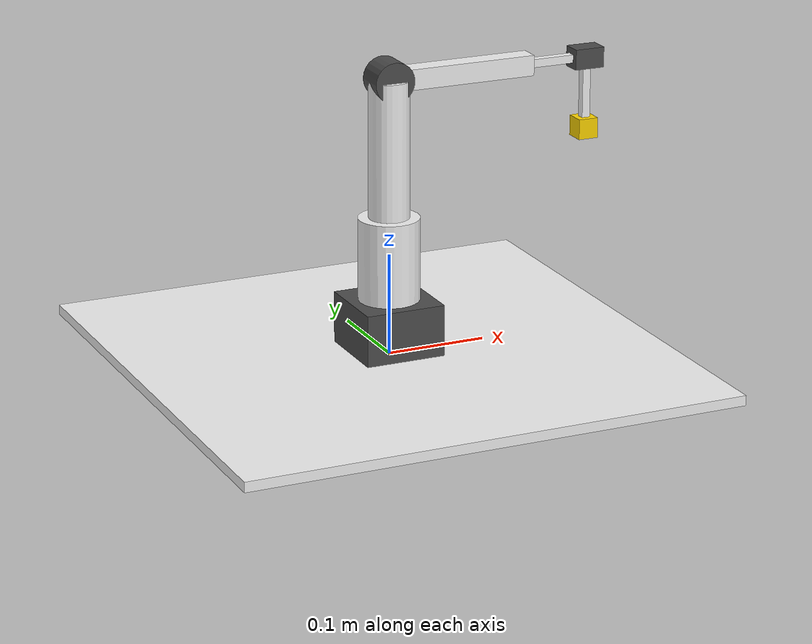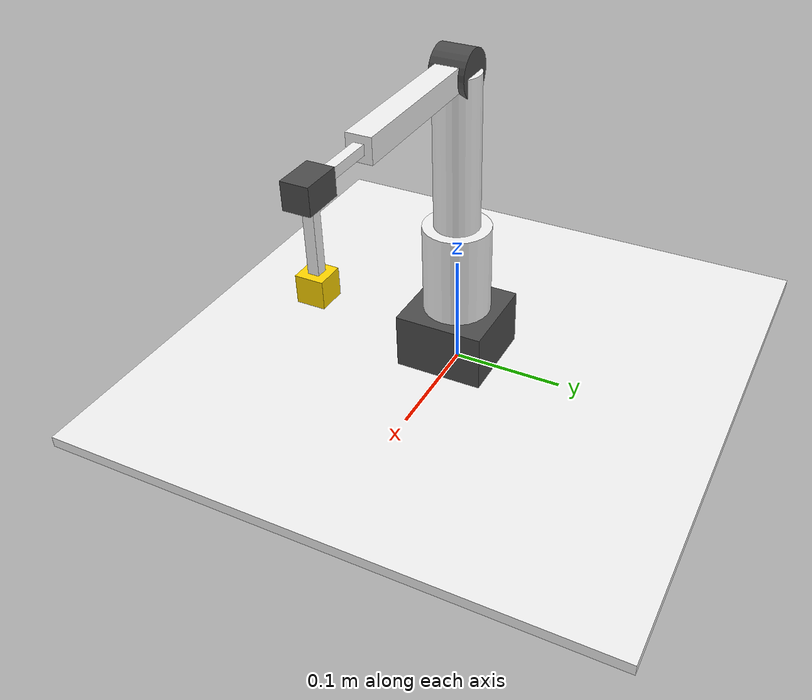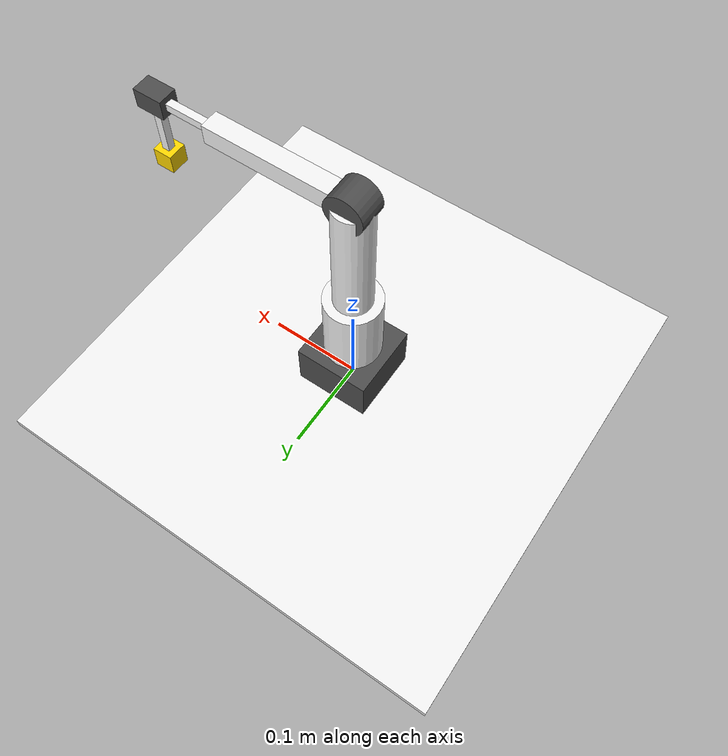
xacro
<?xml version="1.0" encoding="UTF-8"?>
<robot xmlns:xacro="http://www.ros.org/wiki/xacro" name="dobot_magician">

  <xacro:property name="L0" value="0.056" />
  <xacro:property name="L0size" value="0.08" />
  <xacro:property name="L1" value="0.082" />
  <xacro:property name="L1radius" value="0.03" />
  <xacro:property name="L2" value="0.135" />
  <xacro:property name="L2radius" value="0.02" />
  <xacro:property name="L3" value="0.147" />
  <xacro:property name="L3radius" value="0.02" />
  <xacro:property name="L4" value="0.06" />
  <xacro:property name="L4size" value="0.008" />
  <xacro:property name="L5" value="0.07" />
  <xacro:property name="L5size" value="0.008" />
  <xacro:property name="eesize" value="0.02" />

  <xacro:property name="J1MIN" value="${-pi/2}" />
  <xacro:property name="J1MAX" value="${pi/2}" />
  <xacro:property name="J2MIN" value="0" />
  <xacro:property name="J2MAX" value="${(70*pi)/180}" />
  <xacro:property name="J3MIN" value="${(-15*pi)/180}" />
  <xacro:property name="J3MAX" value="${(60*pi)/180}" />
  <xacro:property name="J4MIN" value="${-pi/2}" />
  <xacro:property name="J4MAX" value="${pi/2}" />

  <material name="white">
    <color rgba="0.95 0.95 0.95 1" />
  </material>
  <material name="dark_gray">
    <color rgba="0.3 0.3 0.3 1" />
  </material>
  <material name="yellow">
    <color rgba="1 0.84 0 1" />
  </material>
  <material name="black">
    <color rgba="0.1 0.1 0.1 1"/>
  </material>

  <link name="world" />

  <joint name="base_in_world" type="fixed">
    <parent link="world" />
    <child link="base" />
    <origin xyz="0 0 0" rpy="0 0 0" />
  </joint>

  <link name="base">
    <visual>
      <origin xyz="0 0 0" />
      <geometry>
        <box size="0.5 0.5 0.01" />
      </geometry>
      <material name="white" />
    </visual>
  </link>

  <joint name="link0_in_base" type="fixed">
    <parent link="base" />
    <child link="link0" />
    <origin xyz="0 0 0" rpy="0 0 0" />
  </joint>

  <link name="link0">
    <visual name="link0">
      <origin xyz="0 0 ${L0/2}" />
      <geometry>
        <box size="${L0size} ${L0size} ${L0}" />
      </geometry>
      <material name="dark_gray" />
    </visual>
  </link>

  <joint name="joint1" type="revolute">
    <parent link="link0" />
    <child link="link1" />
    <origin xyz="0 0 ${L0}" rpy="0 0 0" />
    <axis xyz="0 0 1" />
    <limit lower="${J1MIN}" upper="${J1MAX}" effort="1" velocity="1" />
  </joint>

  <link name="link1">
    <visual name="link1">
      <origin xyz="0 0 ${L1/2}" />
      <geometry>
        <cylinder radius="${L1radius}" length="${L1}" />
      </geometry>
      <material name="white" />
    </visual>
  </link>

  <joint name="joint2" type="revolute">
    <parent link="link1" />
    <child link="link2" />
    <origin xyz="0 0 ${L1}" rpy="0 0 0" />
    <axis xyz="0 1 0" />
    <limit lower="${J2MIN}" upper="${J2MAX}" effort="1" velocity="0.5" />
  </joint>

  <link name="link2">
    <visual name="link2">
      <origin xyz="0 0 ${L2/2}" rpy="0 0 ${pi/2}" />
      <geometry>
        <cylinder radius="${L2radius}" length="${L2}" />
      </geometry>
      <material name="white" />
    </visual>
  </link>

  <joint name="midlle_joint1" type="fixed">
    <parent link="link2" />
    <child link="middle_link" />
    <origin xyz="0 0 ${L2}" rpy="0 0 0" />
  </joint>

  <link name="middle_link">
    <visual>
      <origin xyz="0 0 0" rpy="${pi/2} 0 0" />
      <geometry><cylinder radius="${L2radius}" length="0.03" /></geometry>
      <material name="dark_gray" />
    </visual>
  </link>

  <joint name="joint3" type="revolute">
    <parent link="link2" />
    <child link="link3" />
    <origin xyz="0 0 ${L2}" rpy="0 0 0" />
    <axis xyz="0 1 0" />
    <limit lower="${J3MIN}" upper="${J3MAX}" effort="1" velocity="1" />
  </joint>

  <link name="link3">
    <visual name="link3">
      <origin xyz="${L3/2} 0 0" rpy="${pi/2} 0 0" />
      <geometry>
        <box size="${L3} ${L3radius} ${L3radius}" />
      </geometry>
      <material name="white" />
    </visual>
  </link>

  <link name="mimic" />

  <joint name="mimic_1" type="revolute">
    <parent link="link3"/>
    <child link="mimic"/>
    <origin xyz="${L3} 0 0" rpy="0 0 0"/>
    <axis xyz="0 1 0"/>
    <limit lower="${-pi}" upper="${pi}" effort="1" velocity="1"/>
    <mimic joint="joint2" multiplier="-1.0" offset="0.0"/>
  </joint>

  <joint name="mimic_2" type="revolute">
    <parent link="mimic"/>
    <child link="link4"/>
    <origin xyz="0 0 0" rpy="0 0 0"/>
    <axis xyz="0 1 0"/>
    <limit lower="${-pi}" upper="${pi}" effort="1" velocity="1.0"/>
    <mimic joint="joint3" multiplier="-1.0" offset="0.0"/>
  </joint>

  <link name="link4">
    <visual name="link4">
      <origin xyz="${L4/2} 0 0" rpy="${pi/2} 0 0"/>
      <geometry>
        <box size="${L4} ${L4size} ${L4size}" />
      </geometry>
      <material name="white" />
    </visual>
  </link>

  <joint name="joint_middle2" type="fixed">
    <parent link="link4" />
    <child link="middle_link2" />
    <origin xyz="${L4} 0 0" rpy="0 0 0" />
  </joint>

  <link name="middle_link2">
    <visual>
      <origin xyz="0 0 0" />
      <geometry>
        <box size="${L4/2} ${eesize} ${eesize}" />
      </geometry>
      <material name="dark_gray" />
    </visual>
  </link>

  <joint name="joint4" type="revolute">
    <parent link="link4" />
    <child link="link5" />
    <origin xyz="${L4} 0 0" rpy="0 0 0" />
    <axis xyz="0 0 1" />
    <limit lower="${J1MIN}" upper="${J1MAX}" effort="1" velocity="0.5" />
  </joint>

  <link name="link5">
    <visual name="link5">
      <origin xyz="0 0 ${-L5/2}" rpy="0 ${pi/2} 0"/>
      <geometry>
        <box size="${L5} ${L5size} ${L5size}" />
      </geometry>
      <material name="white" />
    </visual>
  </link>

  <joint name="ee_joint" type="fixed">
    <parent link="link5" />
    <child link="ee" />
    <origin xyz="0 0 ${-L5}" rpy="0 0 0" />
  </joint>

  <link name="ee">
    <visual name="ee">
      <origin xyz="0 0 0" />
      <geometry>
        <box size="${eesize} ${eesize} ${eesize}" />
      </geometry>
      <material name="yellow" />
    </visual>
  </link>

</robot>
